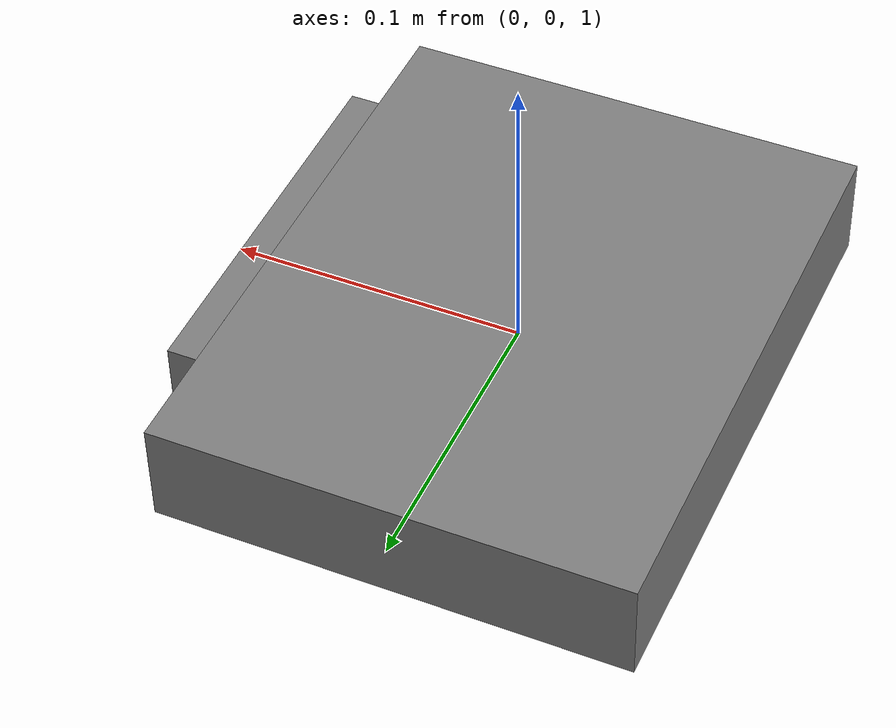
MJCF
<mujoco>
  <option gravity="0 0 0"/>
  <worldbody>
    <geom name="floor" type="plane" size="1 1 1"/>
    <body name="robot" pos="0 0 1"> <joint type="free"/> <geom name="base" type="box" size="0.08 0.10 0.018" mass="1"/>
      <body name="kicker" pos="0.08 0 0"> <joint name="slide" type="slide" axis="1 0 0" range="0 0.05"/>
        <geom name="plate" type="box" size="0.005 0.0665 0.018" pos="0.005 0 0" mass="0.1"/>
      </body>
    </body>
  </worldbody>
  <contact>
    <exclude body1="robot" body2="kicker"/>
  </contact>
</mujoco>
